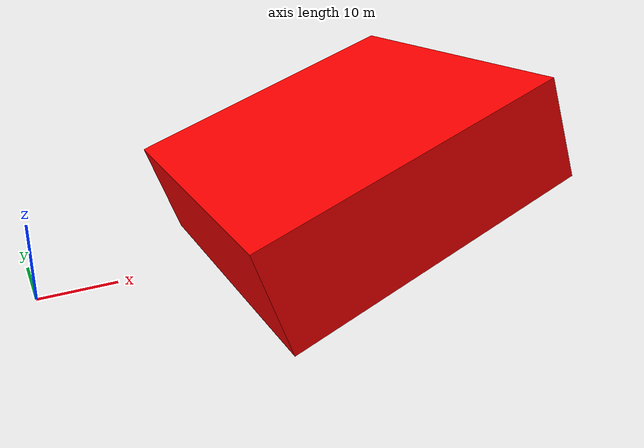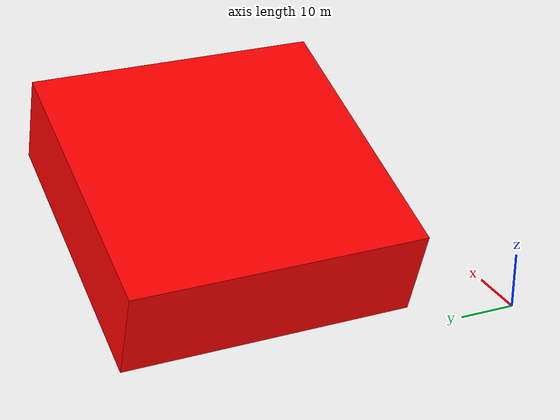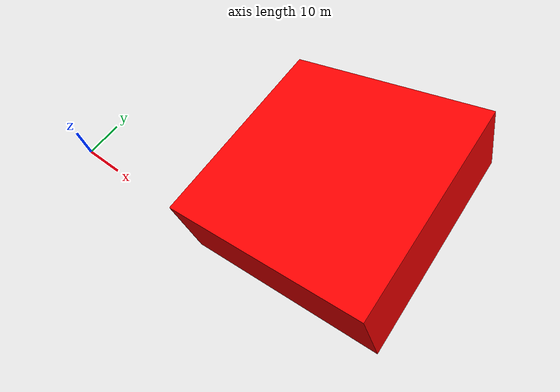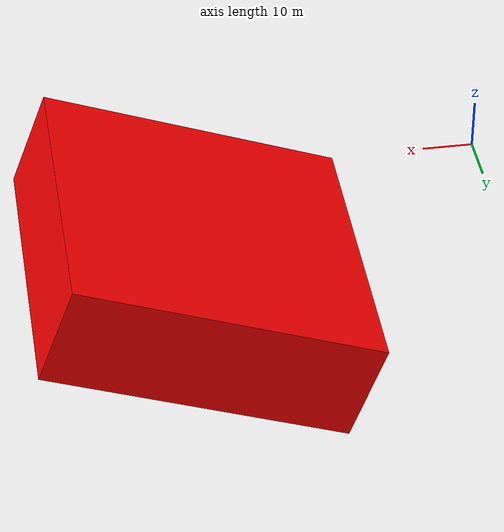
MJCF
<mujoco model="random_box_terrain">
    <compiler angle="degree" coordinate="local"/>
    <option timestep="0.01" gravity="0 0 -9.81" integrator="RK4"/>

    <asset>
        <texture type="2d" name="Plastic006_color"      file="../../textures/Plastic006_2K-PNG/Plastic006_2K-PNG_Color.png"/>
        <texture type="2d" name="Plastic006_roughness"  file="../../textures/Plastic006_2K-PNG/Plastic006_2K-PNG_Roughness.png"/>
        <texture type="2d" name="Plastic006_normal"     file="../../textures/Plastic006_2K-PNG/Plastic006_2K-PNG_NormalDX.png"/>

        <material name="pbr_plastic_black" metallic ="0.05" roughness="1.0" rgba="1 0 0 1.0">
        <layer role="rgb"        texture="Plastic006_color"/>
        <layer role="normal"     texture="Plastic006_normal"/>
        <layer role="roughness"  texture="Plastic006_roughness"/>
        </material>

        <texture type="2d" name="Plastic013A_color"      file="../../textures/Plastic013A_2K-PNG/Plastic013A_2K-PNG_Color.png"/>
        <texture type="2d" name="Plastic013A_roughness"  file="../../textures/Plastic013A_2K-PNG/Plastic013A_2K-PNG_Roughness.png"/>
        <texture type="2d" name="Plastic013A_normal"     file="../../textures/Plastic013A_2K-PNG/Plastic013A_2K-PNG_NormalDX.png"/>

        <material name="pbr_plastic_white" metallic ="0.05" roughness="1.0" rgba="1 0 0 1.0">
        <layer role="rgb"        texture="Plastic013A_color"/>
        <layer role="normal"     texture="Plastic013A_normal"/>
        <layer role="roughness"  texture="Plastic013A_roughness"/>
        </material>

        <texture type="2d" name="Plastic010_color"      file="../../textures/Plastic010_2K-PNG/Plastic010_2K-PNG_Color.png"/>
        <texture type="2d" name="Plastic010_roughness"  file="../../textures/Plastic010_2K-PNG/Plastic010_2K-PNG_Roughness.png"/>
        <texture type="2d" name="Plastic010_normal"     file="../../textures/Plastic010_2K-PNG/Plastic010_2K-PNG_NormalDX.png"/>

        <material name="pbr_plastic_gray" metallic ="0.05" roughness="1.0" rgba="1 0 0 1.0">
        <layer role="rgb"        texture="Plastic010_color"/>
        <layer role="normal"     texture="Plastic010_normal"/>
        <layer role="roughness"  texture="Plastic010_roughness"/>
        </material>
    </asset>
    <worldbody>
        <body name="offset" pos="60 30 0">
            <body name="terrain" pos="0 0 0.0">
                <geom type="box" pos="0 0 0.5" size="30 30 10" euler="0 -20 0" material="pbr_plastic_gray"/>
            </body>
        </body>
    </worldbody>

    <actuator>
        <!-- 在这里你可以定义一些控制器 -->
    </actuator>

</mujoco>
